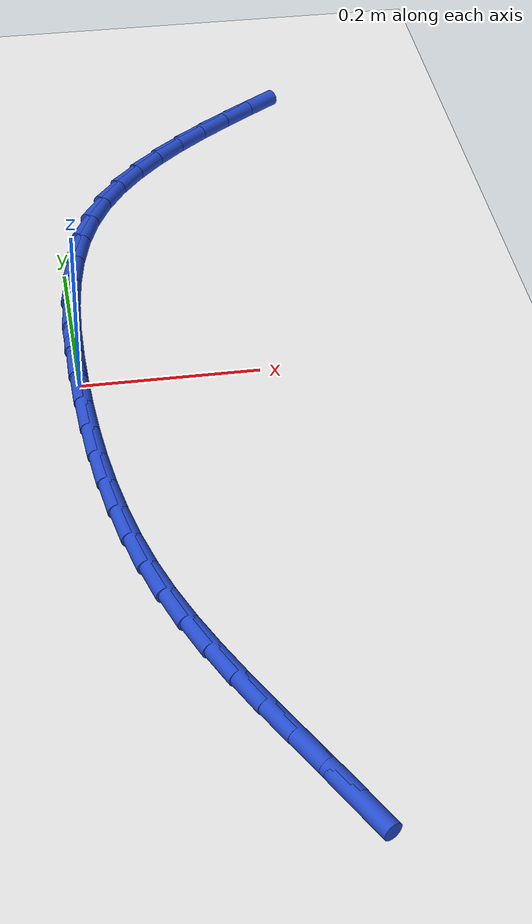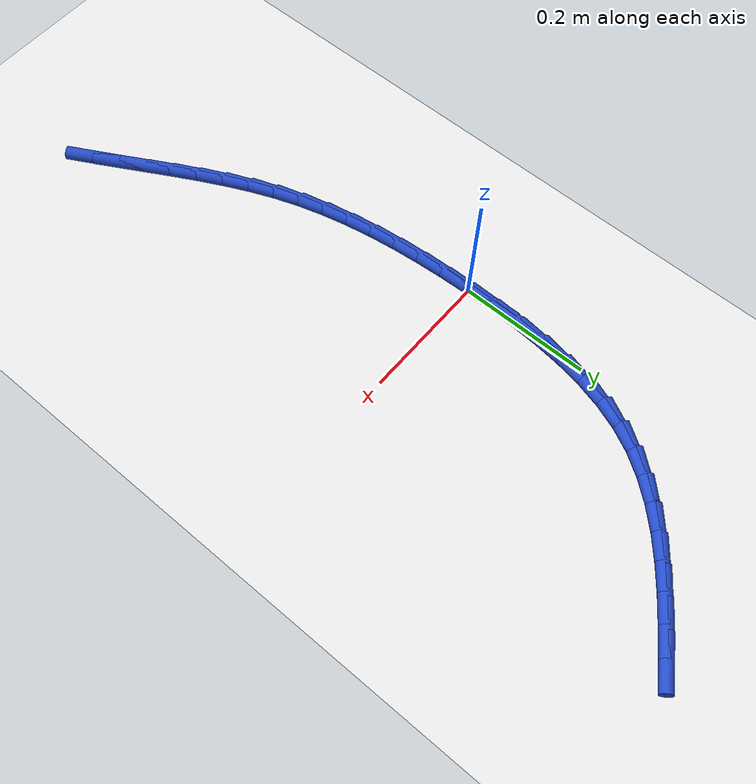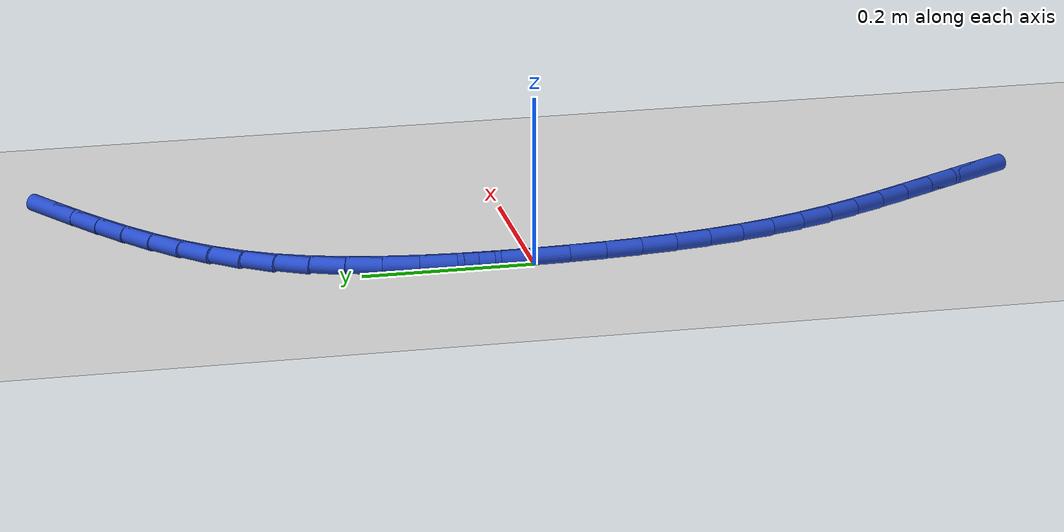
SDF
<sdf version="1.6">
 <world name="default">
  <model name="ground_plane">
   <static>1</static>
   <link name="link">
    <collision name="collision">
     <geometry><plane><normal>0 0 1</normal><size>100 100</size></plane></geometry>
     <surface><friction><ode><mu>100</mu><mu2>50</mu2></ode></friction></surface>
    </collision>
    <visual name="visual">
     <cast_shadows>0</cast_shadows>
     <geometry><plane><normal>0 0 1</normal><size>100 100</size></plane></geometry>
     <material>
      <script><uri>file://media/materials/scripts/gazebo.material</uri><name>Gazebo/WhiteGlow</name></script>
     </material>
    </visual>
   </link>
  </model>
  <model name="line">
   <link name="link_0">
    <pose>4.423544863740858e-17 4.163336342344337e-17 0.01 0 1.57 -1.556785566252386</pose>
    <collision name="collision">
     <geometry><cylinder><radius>0.01</radius><length>0.08</length></cylinder></geometry>
    </collision>
    <visual name="visual">
     <material>
      <script><name>Gazebo/Blue</name><uri>file://media/materials/scripts/gazebo.material</uri></script>
     </material>
     <geometry><cylinder><radius>0.01</radius><length>0.08</length></cylinder></geometry>
    </visual>
   </link>
   <link name="link_1">
    <pose>-0.00061148497088987 0.043641096907162294 0.01 0 1.57 1.5525097524919338</pose>
    <collision name="collision">
     <geometry><cylinder><radius>0.01</radius><length>0.08</length></cylinder></geometry>
    </collision>
    <visual name="visual">
     <material>
      <script><name>Gazebo/Blue</name><uri>file://media/materials/scripts/gazebo.material</uri></script>
     </material>
     <geometry><cylinder><radius>0.01</radius><length>0.08</length></cylinder></geometry>
    </visual>
   </link>
   <link name="link_2">
    <pose>0.00018691870310016132 0.08729687757461442 0.01 0 1.57 1.5098056811043024</pose>
    <collision name="collision">
     <geometry><cylinder><radius>0.01</radius><length>0.08</length></cylinder></geometry>
    </collision>
    <visual name="visual">
     <material>
      <script><name>Gazebo/Blue</name><uri>file://media/materials/scripts/gazebo.material</uri></script>
     </material>
     <geometry><cylinder><radius>0.01</radius><length>0.08</length></cylinder></geometry>
    </visual>
   </link>
   <link name="link_3">
    <pose>0.002828787985345237 0.13055912945101494 0.01 0 1.57 1.455463689485531</pose>
    <collision name="collision">
     <geometry><cylinder><radius>0.01</radius><length>0.08</length></cylinder></geometry>
    </collision>
    <visual name="visual">
     <material>
      <script><name>Gazebo/Blue</name><uri>file://media/materials/scripts/gazebo.material</uri></script>
     </material>
     <geometry><cylinder><radius>0.01</radius><length>0.08</length></cylinder></geometry>
    </visual>
   </link>
   <link name="link_4">
    <pose>0.007747699839220458 0.1730196399850226 0.01 0 1.57 1.3879072587157146</pose>
    <collision name="collision">
     <geometry><cylinder><radius>0.01</radius><length>0.08</length></cylinder></geometry>
    </collision>
    <visual name="visual">
     <material>
      <script><name>Gazebo/Blue</name><uri>file://media/materials/scripts/gazebo.material</uri></script>
     </material>
     <geometry><cylinder><radius>0.01</radius><length>0.08</length></cylinder></geometry>
    </visual>
   </link>
   <link name="link_5">
    <pose>0.01537723122810092 0.21427019662529592 0.01 0 1.57 1.305368924905771</pose>
    <collision name="collision">
     <geometry><cylinder><radius>0.01</radius><length>0.08</length></cylinder></geometry>
    </collision>
    <visual name="visual">
     <material>
      <script><name>Gazebo/Blue</name><uri>file://media/materials/scripts/gazebo.material</uri></script>
     </material>
     <geometry><cylinder><radius>0.01</radius><length>0.08</length></cylinder></geometry>
    </visual>
   </link>
   <link name="link_6">
    <pose>0.026150959115361715 0.2539025868204936 0.01 0 1.57 1.2062276343844942</pose>
    <collision name="collision">
     <geometry><cylinder><radius>0.01</radius><length>0.08</length></cylinder></geometry>
    </collision>
    <visual name="visual">
     <material>
      <script><name>Gazebo/Blue</name><uri>file://media/materials/scripts/gazebo.material</uri></script>
     </material>
     <geometry><cylinder><radius>0.01</radius><length>0.08</length></cylinder></geometry>
    </visual>
   </link>
   <link name="link_7">
    <pose>0.04050246046437798 0.2915085980192742 0.01 0 1.57 1.0902701578969165</pose>
    <collision name="collision">
     <geometry><cylinder><radius>0.01</radius><length>0.08</length></cylinder></geometry>
    </collision>
    <visual name="visual">
     <material>
      <script><name>Gazebo/Blue</name><uri>file://media/materials/scripts/gazebo.material</uri></script>
     </material>
     <geometry><cylinder><radius>0.01</radius><length>0.08</length></cylinder></geometry>
    </visual>
   </link>
   <link name="link_8">
    <pose>0.05884489795904817 0.32669591441029444 0.01 0 1.57 0.9725746663491354</pose>
    <collision name="collision">
     <geometry><cylinder><radius>0.01</radius><length>0.08</length></cylinder></geometry>
    </collision>
    <visual name="visual">
     <material>
      <script><name>Gazebo/Blue</name><uri>file://media/materials/scripts/gazebo.material</uri></script>
     </material>
     <geometry><cylinder><radius>0.01</radius><length>0.08</length></cylinder></geometry>
    </visual>
   </link>
   <link name="link_9">
    <pose>0.08114645472271136 0.3594187288300855 0.01 0 1.57 0.8695285254505525</pose>
    <collision name="collision">
     <geometry><cylinder><radius>0.01</radius><length>0.08</length></cylinder></geometry>
    </collision>
    <visual name="visual">
     <material>
      <script><name>Gazebo/Blue</name><uri>file://media/materials/scripts/gazebo.material</uri></script>
     </material>
     <geometry><cylinder><radius>0.01</radius><length>0.08</length></cylinder></geometry>
    </visual>
   </link>
   <link name="link_10">
    <pose>0.10694355981670733 0.38996744397625405 0.01 0 1.57 0.7830941370971138</pose>
    <collision name="collision">
     <geometry><cylinder><radius>0.01</radius><length>0.08</length></cylinder></geometry>
    </collision>
    <visual name="visual">
     <material>
      <script><name>Gazebo/Blue</name><uri>file://media/materials/scripts/gazebo.material</uri></script>
     </material>
     <geometry><cylinder><radius>0.01</radius><length>0.08</length></cylinder></geometry>
    </visual>
   </link>
   <link name="link_11">
    <pose>0.13575487387749763 0.41864629894121025 0.01 0 1.57 0.7131475349329565</pose>
    <collision name="collision">
     <geometry><cylinder><radius>0.01</radius><length>0.08</length></cylinder></geometry>
    </collision>
    <visual name="visual">
     <material>
      <script><name>Gazebo/Blue</name><uri>file://media/materials/scripts/gazebo.material</uri></script>
     </material>
     <geometry><cylinder><radius>0.01</radius><length>0.08</length></cylinder></geometry>
    </visual>
   </link>
   <link name="link_12">
    <pose>0.1670990575415438 0.4457595328173646 0.01 0 1.57 0.6587518446635525</pose>
    <collision name="collision">
     <geometry><cylinder><radius>0.01</radius><length>0.08</length></cylinder></geometry>
    </collision>
    <visual name="visual">
     <material>
      <script><name>Gazebo/Blue</name><uri>file://media/materials/scripts/gazebo.material</uri></script>
     </material>
     <geometry><cylinder><radius>0.01</radius><length>0.08</length></cylinder></geometry>
    </visual>
   </link>
   <link name="link_13">
    <pose>0.2004947714453075 0.47161138469712754 0.01 0 1.57 0.6187150680341555</pose>
    <collision name="collision">
     <geometry><cylinder><radius>0.01</radius><length>0.08</length></cylinder></geometry>
    </collision>
    <visual name="visual">
     <material>
      <script><name>Gazebo/Blue</name><uri>file://media/materials/scripts/gazebo.material</uri></script>
     </material>
     <geometry><cylinder><radius>0.01</radius><length>0.08</length></cylinder></geometry>
    </visual>
   </link>
   <link name="link_14">
    <pose>0.2354606762252504 0.49650609367290954 0.01 0 1.57 0.5919343499389832</pose>
    <collision name="collision">
     <geometry><cylinder><radius>0.01</radius><length>0.08</length></cylinder></geometry>
    </collision>
    <visual name="visual">
     <material>
      <script><name>Gazebo/Blue</name><uri>file://media/materials/scripts/gazebo.material</uri></script>
     </material>
     <geometry><cylinder><radius>0.01</radius><length>0.08</length></cylinder></geometry>
    </visual>
   </link>
   <link name="link_15">
    <pose>0.2715154325178338 0.5207478988371207 0.01 0 1.57 0.5775758826778833</pose>
    <collision name="collision">
     <geometry><cylinder><radius>0.01</radius><length>0.08</length></cylinder></geometry>
    </collision>
    <visual name="visual">
     <material>
      <script><name>Gazebo/Blue</name><uri>file://media/materials/scripts/gazebo.material</uri></script>
     </material>
     <geometry><cylinder><radius>0.01</radius><length>0.08</length></cylinder></geometry>
    </visual>
   </link>
   <link name="link_185">
    <pose>0.19146648171998104 -0.5886745884591857 0.01 0 1.57 -1.0653908109755392</pose>
    <collision name="collision">
     <geometry><cylinder><radius>0.01</radius><length>0.08</length></cylinder></geometry>
    </collision>
    <visual name="visual">
     <material>
      <script><name>Gazebo/Blue</name><uri>file://media/materials/scripts/gazebo.material</uri></script>
     </material>
     <geometry><cylinder><radius>0.01</radius><length>0.08</length></cylinder></geometry>
    </visual>
   </link>
   <link name="link_186">
    <pose>0.17042838215172032 -0.550654530286171 0.01 0 1.57 -1.0566019737519023</pose>
    <collision name="collision">
     <geometry><cylinder><radius>0.01</radius><length>0.08</length></cylinder></geometry>
    </collision>
    <visual name="visual">
     <material>
      <script><name>Gazebo/Blue</name><uri>file://media/materials/scripts/gazebo.material</uri></script>
     </material>
     <geometry><cylinder><radius>0.01</radius><length>0.08</length></cylinder></geometry>
    </visual>
   </link>
   <link name="link_187">
    <pose>0.14935178444028452 -0.5133427865376174 0.01 0 1.57 -1.058056476572514</pose>
    <collision name="collision">
     <geometry><cylinder><radius>0.01</radius><length>0.08</length></cylinder></geometry>
    </collision>
    <visual name="visual">
     <material>
      <script><name>Gazebo/Blue</name><uri>file://media/materials/scripts/gazebo.material</uri></script>
     </material>
     <geometry><cylinder><radius>0.01</radius><length>0.08</length></cylinder></geometry>
    </visual>
   </link>
   <link name="link_188">
    <pose>0.12860275640929866 -0.4764858545954257 0.01 0 1.57 -1.0701592856821984</pose>
    <collision name="collision">
     <geometry><cylinder><radius>0.01</radius><length>0.08</length></cylinder></geometry>
    </collision>
    <visual name="visual">
     <material>
      <script><name>Gazebo/Blue</name><uri>file://media/materials/scripts/gazebo.material</uri></script>
     </material>
     <geometry><cylinder><radius>0.01</radius><length>0.08</length></cylinder></geometry>
    </visual>
   </link>
   <link name="link_189">
    <pose>0.10854736698822054 -0.43983023059522547 0.01 0 1.57 -1.0932601456238427</pose>
    <collision name="collision">
     <geometry><cylinder><radius>0.01</radius><length>0.08</length></cylinder></geometry>
    </collision>
    <visual name="visual">
     <material>
      <script><name>Gazebo/Blue</name><uri>file://media/materials/scripts/gazebo.material</uri></script>
     </material>
     <geometry><cylinder><radius>0.01</radius><length>0.08</length></cylinder></geometry>
    </visual>
   </link>
   <link name="link_190">
    <pose>0.08955168510650785 -0.40312241067264615 0.01 0 1.57 -1.127601884678907</pose>
    <collision name="collision">
     <geometry><cylinder><radius>0.01</radius><length>0.08</length></cylinder></geometry>
    </collision>
    <visual name="visual">
     <material>
      <script><name>Gazebo/Blue</name><uri>file://media/materials/scripts/gazebo.material</uri></script>
     </material>
     <geometry><cylinder><radius>0.01</radius><length>0.08</length></cylinder></geometry>
    </visual>
   </link>
   <link name="link_191">
    <pose>0.07198177969361852 -0.3661088909633177 0.01 0 1.57 -1.173224530394793</pose>
    <collision name="collision">
     <geometry><cylinder><radius>0.01</radius><length>0.08</length></cylinder></geometry>
    </collision>
    <visual name="visual">
     <material>
      <script><name>Gazebo/Blue</name><uri>file://media/materials/scripts/gazebo.material</uri></script>
     </material>
     <geometry><cylinder><radius>0.01</radius><length>0.08</length></cylinder></geometry>
    </visual>
   </link>
   <link name="link_192">
    <pose>0.05620371967901057 -0.32853616760287024 0.01 0 1.57 -1.2295305946268402</pose>
    <collision name="collision">
     <geometry><cylinder><radius>0.01</radius><length>0.08</length></cylinder></geometry>
    </collision>
    <visual name="visual">
     <material>
      <script><name>Gazebo/Blue</name><uri>file://media/materials/scripts/gazebo.material</uri></script>
     </material>
     <geometry><cylinder><radius>0.01</radius><length>0.08</length></cylinder></geometry>
    </visual>
   </link>
   <link name="link_193">
    <pose>0.04257291454636838 -0.29015700725996774 0.01 0 1.57 -1.2886370725416723</pose>
    <collision name="collision">
     <geometry><cylinder><radius>0.01</radius><length>0.08</length></cylinder></geometry>
    </collision>
    <visual name="visual">
     <material>
      <script><name>Gazebo/Blue</name><uri>file://media/materials/scripts/gazebo.material</uri></script>
     </material>
     <geometry><cylinder><radius>0.01</radius><length>0.08</length></cylinder></geometry>
    </visual>
   </link>
   <link name="link_194">
    <pose>0.031185760442934998 -0.2508765439699757 0.01 0 1.57 -1.342680066871253</pose>
    <collision name="collision">
     <geometry><cylinder><radius>0.01</radius><length>0.08</length></cylinder></geometry>
    </collision>
    <visual name="visual">
     <material>
      <script><name>Gazebo/Blue</name><uri>file://media/materials/scripts/gazebo.material</uri></script>
     </material>
     <geometry><cylinder><radius>0.01</radius><length>0.08</length></cylinder></geometry>
    </visual>
   </link>
   <link name="link_195">
    <pose>0.02187170607810955 -0.2107569464550052 0.01 0 1.57 -1.3911955838176537</pose>
    <collision name="collision">
     <geometry><cylinder><radius>0.01</radius><length>0.08</length></cylinder></geometry>
    </collision>
    <visual name="visual">
     <material>
      <script><name>Gazebo/Blue</name><uri>file://media/materials/scripts/gazebo.material</uri></script>
     </material>
     <geometry><cylinder><radius>0.01</radius><length>0.08</length></cylinder></geometry>
    </visual>
   </link>
   <link name="link_196">
    <pose>0.014447953442374862 -0.1698675877006139 0.01 0 1.57 -1.434208415208118</pose>
    <collision name="collision">
     <geometry><cylinder><radius>0.01</radius><length>0.08</length></cylinder></geometry>
    </collision>
    <visual name="visual">
     <material>
      <script><name>Gazebo/Blue</name><uri>file://media/materials/scripts/gazebo.material</uri></script>
     </material>
     <geometry><cylinder><radius>0.01</radius><length>0.08</length></cylinder></geometry>
    </visual>
   </link>
   <link name="link_197">
    <pose>0.008731704526213748 -0.1282778406923599 0.01 0 1.57 -1.4718437408153324</pose>
    <collision name="collision">
     <geometry><cylinder><radius>0.01</radius><length>0.08</length></cylinder></geometry>
    </collision>
    <visual name="visual">
     <material>
      <script><name>Gazebo/Blue</name><uri>file://media/materials/scripts/gazebo.material</uri></script>
     </material>
     <geometry><cylinder><radius>0.01</radius><length>0.08</length></cylinder></geometry>
    </visual>
   </link>
   <link name="link_198">
    <pose>0.004540161320109032 -0.08605707841580099 0.01 0 1.57 -1.5042869169994215</pose>
    <collision name="collision">
     <geometry><cylinder><radius>0.01</radius><length>0.08</length></cylinder></geometry>
    </collision>
    <visual name="visual">
     <material>
      <script><name>Gazebo/Blue</name><uri>file://media/materials/scripts/gazebo.material</uri></script>
     </material>
     <geometry><cylinder><radius>0.01</radius><length>0.08</length></cylinder></geometry>
    </visual>
   </link>
   <link name="link_199">
    <pose>0.0016905258145435264 -0.04327467385649509 0.01 0 1.57 -1.53175116495139</pose>
    <collision name="collision">
     <geometry><cylinder><radius>0.01</radius><length>0.08</length></cylinder></geometry>
    </collision>
    <visual name="visual">
     <material>
      <script><name>Gazebo/Blue</name><uri>file://media/materials/scripts/gazebo.material</uri></script>
     </material>
     <geometry><cylinder><radius>0.01</radius><length>0.08</length></cylinder></geometry>
    </visual>
   </link>
   <link name="link_200">
    <pose>5.0523821237824507e-17 -6.938893903907228e-17 0.01 0 1.57 -1.5544533003611622</pose>
    <collision name="collision">
     <geometry><cylinder><radius>0.01</radius><length>0.08</length></cylinder></geometry>
    </collision>
    <visual name="visual">
     <material>
      <script><name>Gazebo/Blue</name><uri>file://media/materials/scripts/gazebo.material</uri></script>
     </material>
     <geometry><cylinder><radius>0.01</radius><length>0.08</length></cylinder></geometry>
    </visual>
   </link>
   <link name="link_201">
    <pose>-0.0007142141330385844 0.04369757016812712 0.01 0 1.57 -1.5544533003611625</pose>
    <collision name="collision">
     <geometry><cylinder><radius>0.01</radius><length>0.08</length></cylinder></geometry>
    </collision>
    <visual name="visual">
     <material>
      <script><name>Gazebo/Blue</name><uri>file://media/materials/scripts/gazebo.material</uri></script>
     </material>
     <geometry><cylinder><radius>0.01</radius><length>0.08</length></cylinder></geometry>
    </visual>
   </link>
  </model>
 </world>
</sdf>
